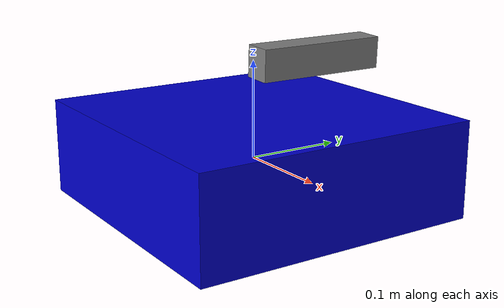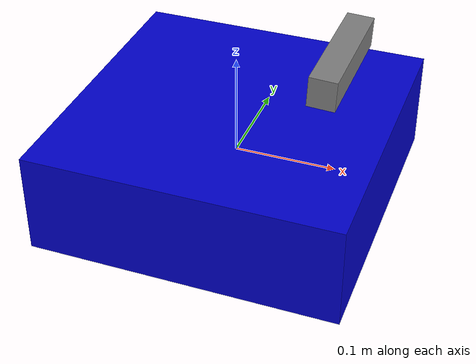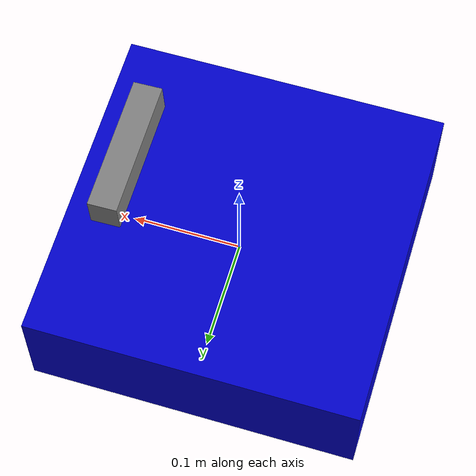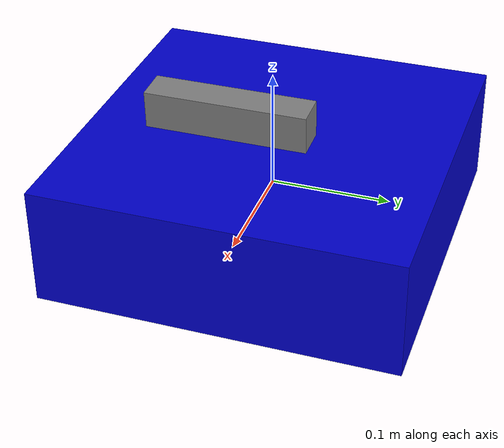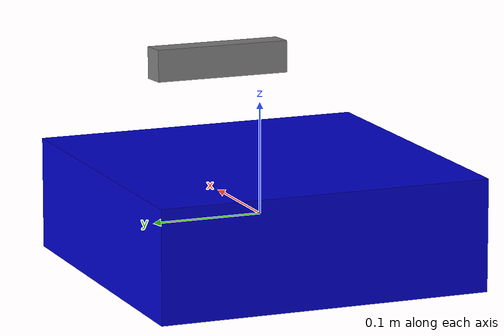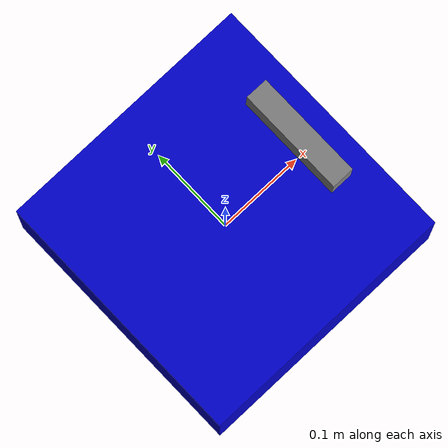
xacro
<?xml version="1.0"?>
<robot xmlns:xacro="http://www.ros.org/wiki/xacro" name="cleaning_robot">

  <!-- Base link - center of robot -->
  <link name="base_link">
    <visual>
      <geometry>
        <box size="0.3 0.3 0.1"/>
      </geometry>
      <material name="blue">
        <color rgba="0 0 0.8 1"/>
      </material>
    </visual>
  </link>

  <!-- Camera link - RealSense D455 mount -->
  <link name="camera_link">
    <visual>
      <geometry>
        <box size="0.026 0.124 0.029"/>
      </geometry>
      <material name="gray">
        <color rgba="0.5 0.5 0.5 1"/>
      </material>
    </visual>
  </link>

  <!-- Joint: base_link to camera_link -->
  <joint name="camera_joint" type="fixed">
    <parent link="base_link"/>
    <child link="camera_link"/>
    <origin xyz="0.1 0 0.12" rpy="0 0.0436 0"/>
  </joint>

  <!-- Camera optical frames (published by realsense2_camera) -->
  <!-- These are defined by the RealSense driver, but we include the camera_link
       which is the parent frame that the driver's frames will be relative to -->

  <!-- Waveshare RoArm-M2 arm                                                  -->
  <!-- Kinematic chain transcribed verbatim from waveshareteam/roarm_ws        -->
  <!-- (ros2-humble) roarm_description/urdf/roarm_m2/roarm_m2.xacro. Links are -->
  <!-- prefixed "arm_" to avoid colliding with this robot's own base_link, and -->
  <!-- carry NO visual/collision geometry on purpose: robot_state_publisher    -->
  <!-- only needs the joint structure to emit each link's TF, and the depth    -->
  <!-- self-filter builds its collision-sphere model in the node (not from     -->
  <!-- URDF meshes, which we don't ship). The joint NAMES below are the         -->
  <!-- contract with arm_bridge's /joint_states publisher.                     -->
  <!-- !!! CALIBRATE: arm_mount_* below is an ESTIMATE of where the arm base   -->
  <!-- bolts onto base_link (from the robot photos). The shape mask only lands -->
  <!-- on the real arm pixels if this transform is right; refine it on hardware-->
  <!-- by aligning the projected arm spheres to the arm in the depth image.    -->
  <xacro:property name="arm_mount_xyz" value="0.12 0 0.22"/>
  <xacro:property name="arm_mount_rpy" value="0 0 0"/>

  <link name="arm_base_link"/>
  <link name="arm_link1"/>
  <link name="arm_link2"/>
  <link name="arm_link3"/>
  <link name="arm_gripper_link"/>
  <link name="arm_hand_tcp"/>

  <!-- Mount: base_link -> arm_base_link (fixed; CALIBRATE origin) -->
  <joint name="arm_mount_joint" type="fixed">
    <parent link="base_link"/>
    <child link="arm_base_link"/>
    <origin xyz="${arm_mount_xyz}" rpy="${arm_mount_rpy}"/>
  </joint>

  <!-- joint1: base yaw -->
  <joint name="arm_joint1" type="revolute">
    <parent link="arm_base_link"/>
    <child link="arm_link1"/>
    <origin xyz="0.01 0 0.123" rpy="0 0 0"/>
    <axis xyz="0 0 1"/>
    <limit lower="-3.1416" upper="3.1416" effort="10" velocity="3.14"/>
  </joint>

  <!-- joint2: shoulder -->
  <joint name="arm_joint2" type="revolute">
    <parent link="arm_link1"/>
    <child link="arm_link2"/>
    <origin xyz="0 0 0" rpy="-1.5708 -1.5708 0"/>
    <axis xyz="0 0 1"/>
    <limit lower="-1.5708" upper="1.5708" effort="10" velocity="3.14"/>
  </joint>

  <!-- joint3: elbow -->
  <joint name="arm_joint3" type="revolute">
    <parent link="arm_link2"/>
    <child link="arm_link3"/>
    <origin xyz="0.2368 0.03 0" rpy="0 0 1.5708"/>
    <axis xyz="0 0 1"/>
    <limit lower="-1.0" upper="2.95" effort="10" velocity="3.14"/>
  </joint>

  <!-- joint4: gripper (jaw) -->
  <joint name="arm_gripper_joint" type="revolute">
    <parent link="arm_link3"/>
    <child link="arm_gripper_link"/>
    <origin xyz="0.002906 -0.21599 -0.00067" rpy="-1.5708 0 -1.5708"/>
    <axis xyz="0 0 1"/>
    <limit lower="0.0" upper="1.5" effort="10" velocity="3.14"/>
  </joint>

  <!-- Tool centre point (fixed, end of link3) -->
  <joint name="arm_hand_tcp_joint" type="fixed">
    <parent link="arm_link3"/>
    <child link="arm_hand_tcp"/>
    <origin xyz="0.002 -0.2802 0" rpy="1.5708 0 -1.5708"/>
  </joint>

</robot>
